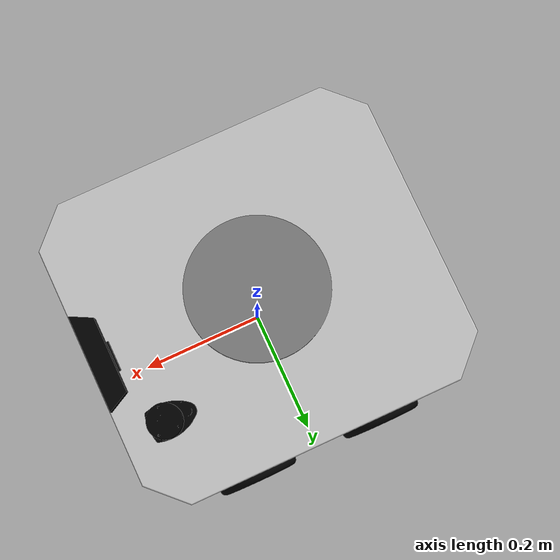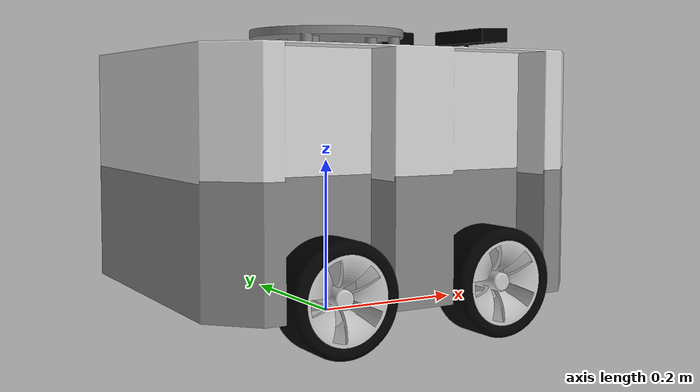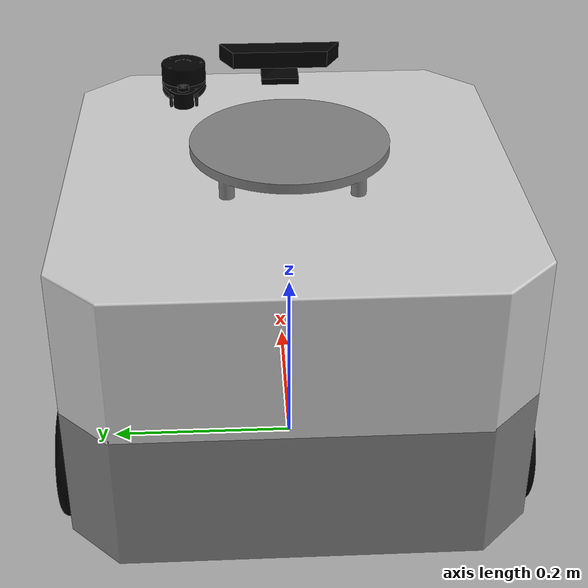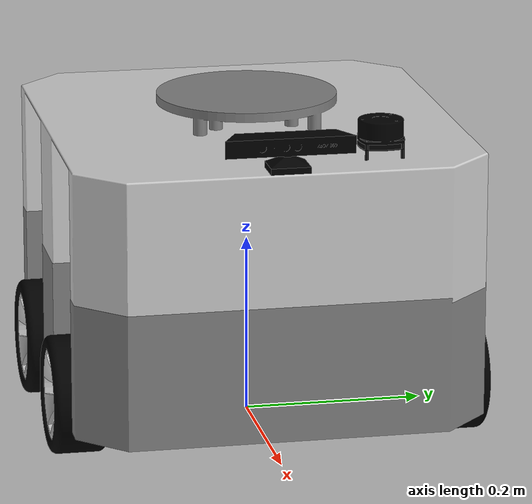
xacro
<?xml version="1.0"?>
<!-- Basic differential drive mobile base -->
<robot xmlns:xacro="http://www.ros.org/wiki/xacro" name="amr">
  <xacro:arg name="prefix" default="" />
  <xacro:arg name="use_sim" default="false" />

  <xacro:include filename="$(find amr_fortess_description)/robots/amr_description.urdf.xacro" />

  <xacro:include filename="$(find amr_fortess_description)/gazebo/amr.gazebo.xacro" />

  <!-- Import amr ros2_control description -->
  <xacro:include filename="$(find amr_fortess_description)/ros2_control/amr.ros2_control.xacro" />

  <xacro:amr prefix="$(arg prefix)" use_sim="$(arg use_sim)"/>
  <xacro:amr_gazebo prefix="$(arg prefix)" />

  <xacro:amr_ros2_control
    name="amr" prefix="$(arg prefix)" use_sim="$(arg use_sim)" />

</robot>

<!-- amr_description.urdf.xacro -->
<robot name="amr" xmlns:xacro="http://ros.org/wiki/xacro">

  <xacro:macro name="amr" params="prefix use_sim:=^|false">

  <material name="gray">
    <color rgba="0.5 0.5 0.5 1"/>
  </material>
  <material name="white">
    <color rgba="1.0 1.0 1.0 1"/>
  </material>
  <material name="black">
    <color rgba="0.0 0.0 0.0"/>
  </material>
  <material name="silver">
    <color rgba="0.75 0.75 0.75 1"/>
  </material>
  <material name="light_gray">
    <color rgba="0.8 0.8 0.8 1"/>
  </material>

    <link name="base_footprint"/>

    <joint name="base_joint" type="fixed">
    <parent link="base_footprint"/>
    <child  link="base"/>
    <origin rpy="0 0 0" xyz="0 0 0.093"/>
    </joint>

    <link name="base">
    <inertial>
    <origin xyz="0 0 0.1" rpy="0 0 0" />
    <mass value="8.34"/>
    <inertia ixx= "2386468.63e-7"
    ixy = "-261456.79e-7"
    iyy = "4827722.72e-7"
    ixz= "76941.00e-7"
    iyz = "57814.62e-7"
    izz = "3252219.31e-7"/></inertial>
    <visual>
    <origin xyz="0 0 0" rpy="0 0 0" />
    <geometry>
    <mesh filename="package://amr_fortess_description/meshes/Base_final.stl"/>
    </geometry>
    <material name="gray"/>
    </visual>
    <collision>
    <geometry>
    <mesh filename="package://amr_fortess_description/meshes/Base_final.stl"/>
    </geometry>
    </collision>
    </link>

    <gazebo reference="base">
      <material>Gazebo/Gray</material>
    </gazebo>

    <xacro:macro name="wheel_macro" params="prefix parent xyz_shaft rpy_shaft xyz_rotation xyz_inner">

        <link name="${prefix}_shaft_link">
        <inertial>
        <mass value="0.06175"/>
        <inertia
        ixx="1111.52e-7"
        iyy="101415.96e-7"
        izz="101415.96e-7"
        ixy="0.0"
        ixz="0.0"
        iyz="0.0"/>
        </inertial>

        <visual>
        <geometry>
        <mesh filename="package://amr_fortess_description/meshes/shaft_final.stl"/>
        </geometry>
        <material name="white"/>
        </visual>

        <collision>
        <geometry>
        <mesh filename="package://amr_fortess_description/meshes/shaft_final.stl"/>
        </geometry>
        </collision>

        </link>

      <gazebo reference="${prefix}_shaft_link">
      <material>Gazebo/Gray</material>
      <mu1 value="2.5" />
      <mu2 value="2.5" />
      <kp value="50000" />
      <kd value="10" />
      </gazebo>

        <link name="${prefix}_inner_link">
        <inertial>
        <mass value="0.94"/>
        <inertia
        ixx="1752393.51e-7"
        iyy="1233250.95e-7"
        izz="1233250.94e-7"
        ixy="-0.01e-7"
        ixz="-0.05e-7"
        iyz="0.1e-7"/>
        </inertial>

        <visual>
        <geometry>
        <mesh filename="package://amr_fortess_description/meshes/inner_final.stl"/>
        </geometry>
        <material name="silver"/>
        </visual>

        <collision>
        <geometry>
        <mesh filename="package://amr_fortess_description/meshes/inner_final.stl"/>
        </geometry>
        </collision>

        </link>

        <gazebo reference="${prefix}_inner_link">
          <material>Gazebo/Gray</material>
        </gazebo>

        <link name="${prefix}_outer_link">
        <inertial>
        <mass value="0.11614"/>
        <inertia
        ixx="366729.55e-7"
        iyy="366729.55e-7"
        izz="435440.86e-7"
        ixy="0.0"
        ixz="0.0"
        iyz="0.0"/>
        </inertial>

        <visual>
        <geometry>
        <mesh filename="package://amr_fortess_description/meshes/outer_final.stl"/>
        </geometry>
        <material name="black"/>
        </visual>

        <collision>
        <geometry>
        <mesh filename="package://amr_fortess_description/meshes/outer_final.stl"/>
        </geometry>
        </collision>

        </link>

        <gazebo reference="${prefix}_outer_link">
          <material>Gazebo/Black</material>
        </gazebo>

        <joint name="${prefix}_motor_joint" type="continuous">
        <origin xyz="${xyz_shaft} " rpy="${rpy_shaft}"/>
        <parent link="${parent}"/>
        <child link="${prefix}_shaft_link"/>
        <axis xyz="${xyz_rotation}"/>
        </joint>\

        <joint name="${prefix}_inner_joint" type="fixed">
        <origin xyz="${xyz_inner}  " rpy="0 0.0 0.0"/>
        <parent link="${prefix}_shaft_link"/>
        <child link="${prefix}_inner_link"/>
        <axis xyz="0.0 0.0 0.0"/>
        </joint>

        <joint name="${prefix}_outer_joint" type="fixed">
        <origin xyz="0.0 0.0 0.0  " rpy="0 0.0 0.0"/>
        <parent link="${prefix}_inner_link"/>
        <child link="${prefix}_outer_link"/>
        <axis xyz="0.0 0.0 0.0"/>
        </joint>

        <transmission name="${prefix}_trans" type="SimpleTransmission">
        <type>transmission_interface/SimpleTransmission</type>
        <actuator name="${prefix}_motor">
        <mechanicalReduction>50</mechanicalReduction>
        </actuator>
        <joint name="${prefix}_motor_joint">
        <hardwareInterface>hardware_interface/VelocityJointInterface</hardwareInterface>
        </joint>
        </transmission>

    </xacro:macro>

    <xacro:wheel_macro prefix="rear_right" parent="base" xyz_shaft="-0.108 0.19 -0.028" rpy_shaft="0 0 0" xyz_rotation="0 1 0" xyz_inner="0 0.022 0"/>
    <xacro:wheel_macro prefix="rear_left" parent="base" xyz_shaft="-0.108 -0.19 -0.028" rpy_shaft="3.14 0 0" xyz_rotation="0 -1 0" xyz_inner="0 0.022 0"/>
    <xacro:wheel_macro prefix="front_right" parent="base" xyz_shaft="0.106 0.19 -0.028" rpy_shaft="0 0 0" xyz_rotation="0 1 0" xyz_inner="0 0.022 0"/>
    <xacro:wheel_macro prefix="front_left" parent="base" xyz_shaft="0.106 -0.19 -0.028" rpy_shaft="3.14 0 0" xyz_rotation="0 -1 0" xyz_inner="0 0.022 0"/>

    <!--
    link for top of the bot
    -->

    <link name="bot_top">
    <inertial>
    <mass value="8.47"/>
    <inertia ixx="0.002307898" iyy="0.004479378" izz="0.002685416" ixy="0.0" ixz="0.0" iyz="0.0"/>
    <origin/>
    </inertial>

    <visual>
    <geometry>
    <mesh filename="package://amr_fortess_description/meshes/top_final.stl"/>
    </geometry>
    <material name="light_gray"/>
    </visual>

    <collision>
    <geometry>
    <mesh filename="package://amr_fortess_description/meshes/top_final.stl"/>
    </geometry>
    </collision>

    </link>

    <gazebo reference="bot_top">
      <material>Gazebo/Gray</material>
    </gazebo>

    <!--
    link for top of the bot plate
    -->

    <link name="bot_top_plate">
    <inertial>
    <mass value="2.54605"/>
    <inertia ixx="0.000065178" iyy="0.000128019" izz="0.000065178" ixy="0.0" ixz="0.0" iyz="0.0"/>
    <origin/>
    </inertial>

    <visual>
    <geometry>
    <mesh filename="package://amr_fortess_description/meshes/top_plate_final.stl"/>
    </geometry>
    <material name="gray"/>
    </visual>

    <collision>
    <geometry>
    <mesh filename="package://amr_fortess_description/meshes/top_final.stl"/>
    </geometry>
    </collision>

    </link>

    <gazebo reference="bot_top_plate">
      <material>Gazebo/Gray</material>
    </gazebo>

    <!--
    link for kinect camera
    -->

    <link name="kinect_camera">
    <inertial>
    <mass value="0.350"/>
    <inertia ixx="0.003042698" iyy="0.000488640" izz="0.002953811" ixy="0.0" ixz="0.0" iyz="0.0"/>
    <origin/>
    </inertial>

    <visual>
    <geometry>
    <mesh filename="package://amr_fortess_description/meshes/kinect.stl"/>
    </geometry>
    <material name="black"/>
    </visual>

    <collision>
    <geometry>
    <mesh filename="package://amr_fortess_description/meshes/kinect.stl"/>
    </geometry>
    </collision>

    </link>

    <gazebo reference="kinect_camera">
      <material>Gazebo/Black</material>
    </gazebo>

    <!--
    link for lidar
    -->

    <link name="lidar">
    <inertial>
    <mass value="0.175"/>
    <inertia ixx="0.000380890" iyy="0.000594858" izz="0.000679996" ixy="0.0" ixz="0.0" iyz="0.0"/>
    <origin/>
    </inertial>

    <visual>
    <geometry>
    <mesh filename="package://amr_fortess_description/meshes/lidar.stl"/>
    </geometry>
    <material name="black"/>
    </visual>

    <collision>
    <geometry>
    <mesh filename="package://amr_fortess_description/meshes/lidar.stl"/>
    </geometry>
    </collision>

    </link>

    <gazebo reference="lidar">
      <material>Gazebo/Black</material>
    </gazebo>

    <!--
    joints for bot top
    -->
    <joint name="bot_top_joint" type="fixed">
    <origin xyz="0.0 0.0 0.2" rpy="0.0 0.0 0.0"/>
    <parent link="base"/>
    <child link="bot_top"/>
    <axis xyz="0.0 0.0 0"/>
    </joint>\

    <!--
    joint for bot top plate
    -->
    <joint name="bot_top_plate_joint" type="prismatic">
    <origin xyz="0.0 0.0 0.07" rpy="0.0 0.0 0.0"/>
    <limit lower="0.00" upper="0.07" effort="100.0" velocity="1.0"/>
    <parent link="bot_top"/>
    <child link="bot_top_plate"/>
    <axis xyz="0.0 0.0 1"/>
    </joint>\

    <!--
    joint for kinect
    -->
    <joint name="kinect_camera_joint" type="fixed">
    <origin xyz="0.23 0.0 0.07" rpy="0.0 0.0 0"/>
    <parent link="bot_top"/>
    <child link="kinect_camera"/>
    <axis xyz="0.0 0.0 0"/>
    </joint>\

    <!--
    joint for lidar
    -->
    <joint name="lidar_joint" type="fixed">
    <origin xyz="0.18 0.11 0.07" rpy="0.0 0.0 0"/>
    <parent link="bot_top"/>
    <child link="lidar"/>
    <axis xyz="0.0 0.0 0"/>
    </joint>

  </xacro:macro>

</robot>
